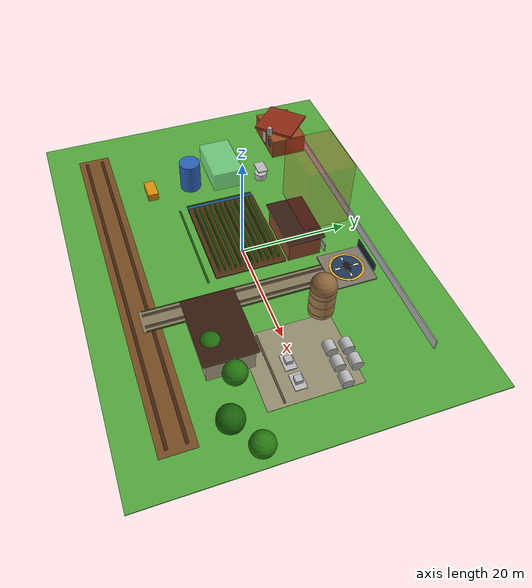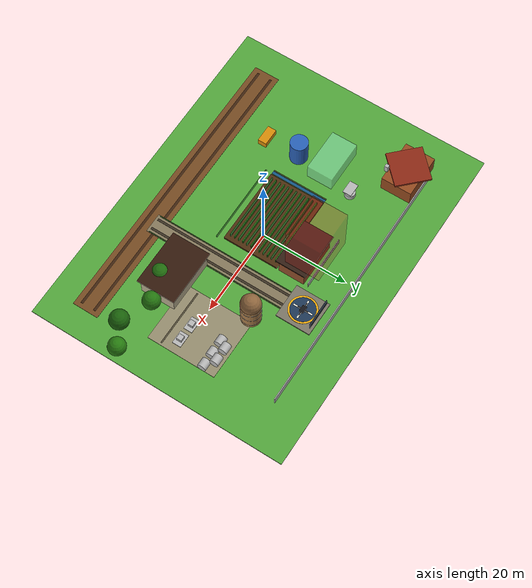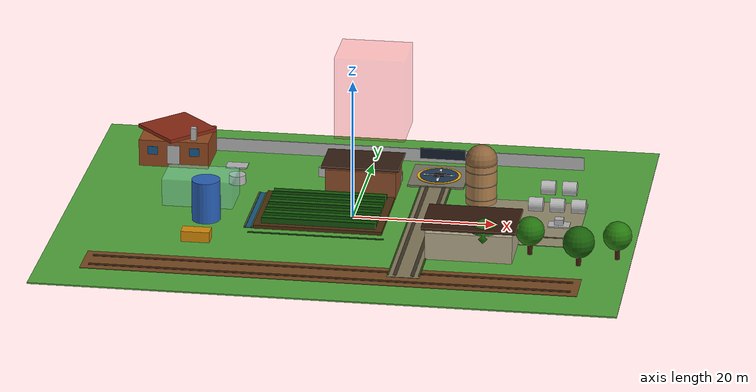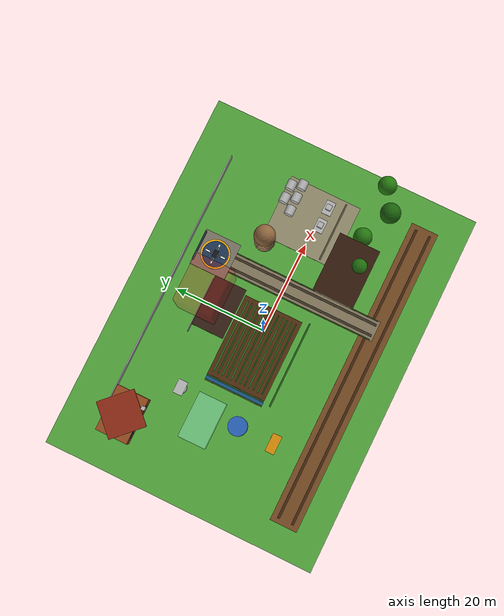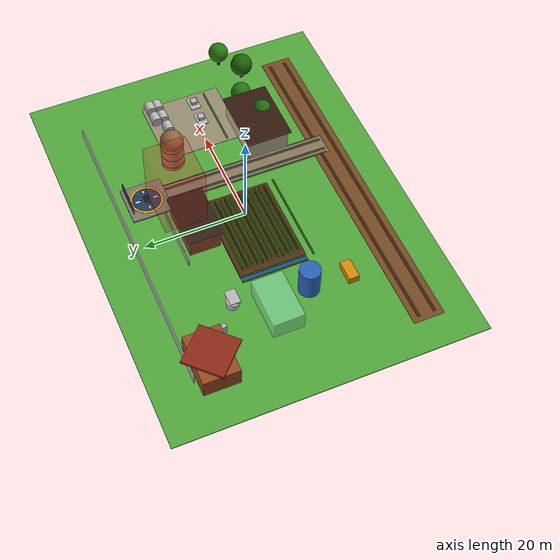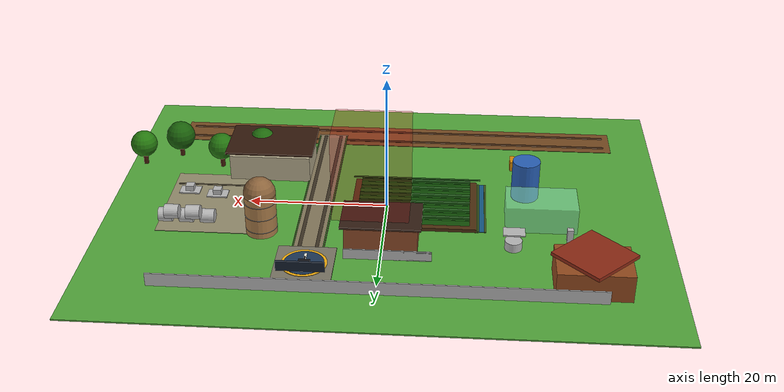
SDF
<?xml version="1.0" ?>
<sdf version="1.9">
  <world name="farm_survey">
    <gravity>0 0 -9.81</gravity>
    <physics name="default_physics" type="ode"><max_step_size>0.004</max_step_size><real_time_factor>1</real_time_factor></physics>
    <scene><ambient>0.55 0.55 0.55 1</ambient><background>0.55 0.75 0.95 1</background><shadows>true</shadows></scene>
    <plugin filename="gz-sim-physics-system" name="gz::sim::systems::Physics"/>
    <plugin filename="gz-sim-user-commands-system" name="gz::sim::systems::UserCommands"/>
    <plugin filename="gz-sim-sensors-system" name="gz::sim::systems::Sensors"/>
    <plugin filename="gz-sim-scene-broadcaster-system" name="gz::sim::systems::SceneBroadcaster"/>
    <gui fullscreen="0">
      <plugin filename="MinimalScene" name="3D View">
        <gz-gui>
          <title>3D View</title>
          <property type="bool" key="showTitleBar">false</property>
          <property type="string" key="state">docked</property>
        </gz-gui>
        <engine>ogre2</engine>
        <scene>scene</scene>
        <!-- Start with the complete farm, route overlay, and restricted volume in view. -->
        <camera_pose>-45 -45 55 0 0.65 0.785398</camera_pose>
        <ambient_light>0.55 0.55 0.55</ambient_light>
        <background_color>0.55 0.75 0.95</background_color>
      </plugin>
      <plugin filename="GzSceneManager" name="Scene Manager"/>
      <plugin filename="InteractiveViewControl" name="Interactive view control"/>
      <plugin filename="WorldControl" name="World control"/>
      <plugin filename="WorldStats" name="World stats"/>
      <plugin filename="EntityContextMenuPlugin" name="Entity context menu"/>
      <plugin filename="MarkerManager" name="MarkerManager">
        <topic_name>/marker</topic_name>
      </plugin>
    </gui>
    <light name="sun" type="directional"><cast_shadows>true</cast_shadows><pose>0 0 30 0 0 0</pose><diffuse>0.9 0.9 0.8 1</diffuse><direction>-0.4 0.2 -1</direction></light>
    <light name="fill_light" type="directional"><cast_shadows>false</cast_shadows><pose>0 0 20 0 0 0</pose><diffuse>0.28 0.34 0.42 1</diffuse><specular>0.08 0.1 0.14 1</specular><direction>0.55 -0.35 -1</direction></light>
    <model name="farm_ground"><static>true</static>
      <link name="link"><collision name="collision"><geometry><box><size>80 60 0.2</size></box></geometry></collision><visual name="visual"><geometry><box><size>80 60 0.2</size></box></geometry><material><ambient>0.24 0.52 0.18 1</ambient><diffuse>0.32 0.65 0.23 1</diffuse></material></visual></link>
    </model>

    <!-- Dedicated launch and landing area; home coordinates are (10, 16). -->
    <model name="drone_station"><static>true</static><pose>10 16 0 0 0 0</pose>
      <link name="link">
        <collision name="deck_collision"><pose>0 0 0.25 0 0 0</pose><geometry><box><size>8 8 0.3</size></box></geometry></collision>
        <visual name="deck"><pose>0 0 0.25 0 0 0</pose><geometry><box><size>8 8 0.3</size></box></geometry><material><ambient>0.26 0.25 0.22 1</ambient><diffuse>0.48 0.46 0.4 1</diffuse><specular>0.16 0.16 0.14 1</specular><pbr><metal><albedo_map>model://assets/materials/concrete/concrete_albedo_2k.png</albedo_map><roughness_map>model://assets/materials/concrete/concrete_roughness_2k.png</roughness_map><metalness>0.0</metalness><roughness>0.82</roughness></metal></pbr></material></visual>
        <visual name="landing_zone"><pose>0 0 0.43 0 0 0</pose><geometry><cylinder><radius>3.15</radius><length>0.08</length></cylinder></geometry><material><ambient>0.85 0.52 0.03 1</ambient><diffuse>0.95 0.68 0.06 1</diffuse></material></visual>
        <visual name="landing_zone_inner"><pose>0 0 0.48 0 0 0</pose><geometry><cylinder><radius>2.75</radius><length>0.03</length></cylinder></geometry><material><ambient>0.08 0.14 0.22 1</ambient><diffuse>0.12 0.22 0.34 1</diffuse></material></visual>
        <visual name="landing_cross_x"><pose>0 0 0.51 0 0 0</pose><geometry><box><size>4.5 0.35 0.04</size></box></geometry><material><diffuse>0.95 0.95 0.9 1</diffuse></material></visual>
        <visual name="landing_cross_y"><pose>0 0 0.51 0 0 0</pose><geometry><box><size>0.35 4.5 0.04</size></box></geometry><material><diffuse>0.95 0.95 0.9 1</diffuse></material></visual>
        <visual name="station_sign"><pose>0 3.55 2.35 0 0 0</pose><geometry><box><size>6.5 0.2 1.5</size></box></geometry><material><diffuse>0.08 0.12 0.18 1</diffuse></material></visual>
      </link>
    </model>

    <!-- Logical Nav2 no-fly zone marker: visual only, with no collision. -->
    <model name="north_access_restriction_visual"><static>true</static><pose>1 13 14 0 0 0</pose>
      <link name="link">
        <visual name="restricted_volume">
          <geometry><box><size>10 8 12</size></box></geometry>
          <material>
            <ambient>0.65 0.02 0.02 1</ambient>
            <diffuse>0.95 0.04 0.04 1</diffuse>
            <emissive>0.18 0 0 1</emissive>
          </material>
          <transparency>0.82</transparency>
        </visual>
      </link>
    </model>

    <!-- Layered surfaces make the aerial view read as a cultivated farm. -->
    <model name="farm_dirt_road"><static>true</static><pose>0 -21 0.13 0 0 0</pose><link name="link"><visual name="road"><geometry><box><size>68 6 0.08</size></box></geometry><material><ambient>0.34 0.2 0.09 1</ambient><diffuse>0.46 0.29 0.13 1</diffuse><specular>0.08 0.05 0.02 1</specular><pbr><metal><albedo_map>model://assets/materials/dirt_ground/dirt_ground_albedo_2k.png</albedo_map><roughness_map>model://assets/materials/dirt_ground/dirt_ground_roughness_2k.png</roughness_map><metalness>0.0</metalness><roughness>0.96</roughness></metal></pbr></material></visual><visual name="left_track"><pose>0 -1.55 0.06 0 0 0</pose><geometry><box><size>66 0.55 0.03</size></box></geometry><material><diffuse>0.25 0.14 0.06 1</diffuse></material></visual><visual name="right_track"><pose>0 1.55 0.06 0 0 0</pose><geometry><box><size>66 0.55 0.03</size></box></geometry><material><diffuse>0.25 0.14 0.06 1</diffuse></material></visual></link></model>
    <model name="station_access_lane"><static>true</static><pose>10 -2 0.16 0 0 0</pose><link name="link"><visual name="gravel"><geometry><box><size>4.5 38 0.1</size></box></geometry><material><ambient>0.32 0.28 0.21 1</ambient><diffuse>0.52 0.47 0.36 1</diffuse><specular>0.12 0.1 0.07 1</specular><pbr><metal><albedo_map>model://assets/materials/dirt_ground/dirt_ground_albedo_2k.png</albedo_map><roughness_map>model://assets/materials/dirt_ground/dirt_ground_roughness_2k.png</roughness_map><metalness>0.0</metalness><roughness>0.96</roughness></metal></pbr></material></visual><visual name="wheel_track_left"><pose>-1.2 0 0.07 0 0 0</pose><geometry><box><size>0.5 37 0.04</size></box></geometry><material><diffuse>0.24 0.2 0.14 1</diffuse></material></visual><visual name="wheel_track_right"><pose>1.2 0 0.07 0 0 0</pose><geometry><box><size>0.5 37 0.04</size></box></geometry><material><diffuse>0.24 0.2 0.14 1</diffuse></material></visual><visual name="lane_edge_left"><pose>-2.1 0 0.08 0 0 0</pose><geometry><box><size>0.18 37 0.06</size></box></geometry><material><diffuse>0.16 0.34 0.09 1</diffuse></material></visual><visual name="lane_edge_right"><pose>2.1 0 0.08 0 0 0</pose><geometry><box><size>0.18 37 0.06</size></box></geometry><material><diffuse>0.16 0.34 0.09 1</diffuse></material></visual></link></model>
    <model name="farm_yard"><static>true</static><pose>25 1 0.14 0 0 0</pose><link name="link"><visual name="yard"><geometry><box><size>14 16 0.08</size></box></geometry><material><ambient>0.42 0.4 0.32 1</ambient><diffuse>0.58 0.55 0.43 1</diffuse><specular>0.12 0.12 0.1 1</specular><pbr><metal><albedo_map>model://assets/materials/dirt_ground/dirt_ground_albedo_2k.png</albedo_map><roughness_map>model://assets/materials/dirt_ground/dirt_ground_roughness_2k.png</roughness_map><metalness>0.0</metalness><roughness>0.96</roughness></metal></pbr></material></visual><visual name="yard_strip"><pose>0 -5 0.06 0 0 0</pose><geometry><box><size>13 0.35 0.03</size></box></geometry><material><diffuse>0.31 0.28 0.2 1</diffuse></material></visual></link></model>
    <model name="yard_pallets"><static>true</static><pose>27 -1 0.45 0 0 0</pose><link name="link"><visual name="pallet01"><pose>-2 0 0 0 0 0</pose><geometry><box><size>3 2 0.18</size></box></geometry><material><pbr><metal><albedo_map>model://assets/materials/farmhouse_body/farmhouse_body_albedo_2k.png</albedo_map><roughness_map>model://assets/materials/farmhouse_body/farmhouse_body_roughness_2k.png</roughness_map><metalness>0.0</metalness><roughness>0.7</roughness></metal></pbr></material></visual><visual name="pallet02"><pose>2 0 0.5 0 0 0</pose><geometry><box><size>3 2 0.18</size></box></geometry><material><pbr><metal><albedo_map>model://assets/materials/farmhouse_body/farmhouse_body_albedo_2k.png</albedo_map><roughness_map>model://assets/materials/farmhouse_body/farmhouse_body_roughness_2k.png</roughness_map><metalness>0.0</metalness><roughness>0.7</roughness></metal></pbr></material></visual><visual name="crate01"><pose>-2 0 0.55 0 0 0</pose><geometry><box><size>1.2 1.2 0.8</size></box></geometry><material><pbr><metal><albedo_map>model://assets/materials/farmhouse_body/farmhouse_body_albedo_2k.png</albedo_map><roughness_map>model://assets/materials/farmhouse_body/farmhouse_body_roughness_2k.png</roughness_map><metalness>0.0</metalness><roughness>0.7</roughness></metal></pbr></material></visual><visual name="crate02"><pose>2 0 1.05 0 0 0</pose><geometry><box><size>1.2 1.2 0.8</size></box></geometry><material><pbr><metal><albedo_map>model://assets/materials/farmhouse_body/farmhouse_body_albedo_2k.png</albedo_map><roughness_map>model://assets/materials/farmhouse_body/farmhouse_body_roughness_2k.png</roughness_map><metalness>0.0</metalness><roughness>0.7</roughness></metal></pbr></material></visual></link></model>
    <model name="south_field_border"><static>true</static><pose>-4 -8 0.15 0 0 0</pose><link name="link"><visual name="grass_edge"><geometry><box><size>19 0.35 0.08</size></box></geometry><material><diffuse>0.12 0.34 0.08 1</diffuse></material></visual></link></model>
    <model name="field_irrigation_channel"><static>true</static><pose>-13.7 0 0.2 0 0 0</pose><link name="link"><visual name="water"><geometry><box><size>0.7 13 0.08</size></box></geometry><material><ambient>0.04 0.18 0.3 1</ambient><diffuse>0.08 0.34 0.52 1</diffuse><specular>0.7 0.8 0.9 1</specular></material></visual><visual name="bank_left"><pose>-0.5 0 0 0 0 0</pose><geometry><box><size>0.25 13 0.2</size></box></geometry><material><diffuse>0.24 0.32 0.12 1</diffuse></material></visual><visual name="bank_right"><pose>0.5 0 0 0 0 0</pose><geometry><box><size>0.25 13 0.2</size></box></geometry><material><diffuse>0.24 0.32 0.12 1</diffuse></material></visual></link></model>

    <!-- Farmhouse and utility scenery -->
    <model name="farmhouse"><static>true</static><pose>-28 18 2 0 0 0</pose><link name="link"><visual name="body"><geometry><box><size>10 7 4</size></box></geometry><material><ambient>0.32 0.16 0.07 1</ambient><diffuse>0.58 0.29 0.12 1</diffuse><specular>0.18 0.12 0.08 1</specular><pbr><metal><albedo_map>model://assets/materials/farmhouse_body/farmhouse_body_albedo_2k.png</albedo_map><roughness_map>model://assets/materials/farmhouse_body/farmhouse_body_roughness_2k.png</roughness_map><metalness>0.0</metalness><roughness>0.58</roughness></metal></pbr></material></visual><visual name="roof"><pose>0 0 2.8 0 0 0.785</pose><geometry><box><size>8 8 0.5</size></box></geometry><material><diffuse>0.55 0.16 0.08 1</diffuse></material></visual></link></model>
    <model name="well_north"><static>true</static><pose>-18 10 0.7 0 0 0</pose><link name="link"><visual name="ring"><geometry><cylinder><radius>1.2</radius><length>1.4</length></cylinder></geometry><material><pbr><metal><albedo_map>model://assets/materials/concrete/concrete_albedo_2k.png</albedo_map><roughness_map>model://assets/materials/concrete/concrete_roughness_2k.png</roughness_map><metalness>0.0</metalness><roughness>0.88</roughness></metal></pbr></material></visual><visual name="roof"><pose>0 0 2 0 0 0</pose><geometry><box><size>3 2 0.2</size></box></geometry><material><pbr><metal><albedo_map>model://assets/materials/cattle_shed_body/cattle_shed_body_albedo_2k.png</albedo_map><roughness_map>model://assets/materials/cattle_shed_body/cattle_shed_body_roughness_2k.png</roughness_map><metalness>0.0</metalness><roughness>0.75</roughness></metal></pbr></material></visual></link></model>
    <model name="cattle_shed_west"><static>true</static><pose>0 10 2 0 0 0</pose><link name="link"><visual name="body"><geometry><box><size>10 6 4</size></box></geometry><material><ambient>0.3 0.16 0.08 1</ambient><diffuse>0.56 0.3 0.16 1</diffuse><specular>0.18 0.12 0.08 1</specular><pbr><metal><albedo_map>model://assets/materials/cattle_shed_body/cattle_shed_body_albedo_2k.png</albedo_map><roughness_map>model://assets/materials/cattle_shed_body/cattle_shed_body_roughness_2k.png</roughness_map><metalness>0.0</metalness><roughness>0.7</roughness></metal></pbr></material></visual><visual name="roof"><pose>0 0 2.5 0 0 0</pose><geometry><box><size>11 7 0.3</size></box></geometry><material><diffuse>0.2 0.12 0.08 1</diffuse></material></visual></link></model>
    <!-- Visual-only silo skin: geometry, pose, collision, and target identity remain unchanged. -->
    <model name="storage_silo_east"><static>true</static><pose>17 8 3 0 0 0</pose><link name="link"><visual name="tank"><geometry><cylinder><radius>2.2</radius><length>6</length></cylinder></geometry><material><ambient>0.38 0.28 0.18 1</ambient><diffuse>0.68 0.5 0.3 1</diffuse><specular>0.78 0.72 0.62 1</specular><pbr><metal><albedo_map>model://assets/materials/storage_silo/storage_silo_albedo_2k.png</albedo_map><roughness_map>model://assets/materials/storage_silo/storage_silo_roughness_2k.png</roughness_map><metalness>0.24</metalness><roughness>0.36</roughness></metal></pbr></material></visual><visual name="cap"><pose>0 0 3.3 0 0 0</pose><geometry><sphere><radius>2.25</radius></sphere></geometry><material><ambient>0.3 0.22 0.14 1</ambient><diffuse>0.56 0.4 0.24 1</diffuse><specular>0.72 0.66 0.56 1</specular><pbr><metal><albedo_map>model://assets/materials/storage_silo/storage_silo_albedo_2k.png</albedo_map><roughness_map>model://assets/materials/storage_silo/storage_silo_roughness_2k.png</roughness_map><metalness>0.2</metalness><roughness>0.32</roughness></metal></pbr></material></visual></link></model>
    <model name="produce_barn_south"><static>true</static><pose>18 -10 2 0 0 0</pose><link name="link"><visual name="body"><geometry><box><size>12 8 4</size></box></geometry><material><ambient>0.3 0.32 0.28 1</ambient><diffuse>0.72 0.68 0.56 1</diffuse><specular>0.16 0.15 0.12 1</specular><pbr><metal><albedo_map>model://assets/materials/produce_barn_body/produce_barn_body_albedo_2k.png</albedo_map><roughness_map>model://assets/materials/produce_barn_body/produce_barn_body_roughness_2k.png</roughness_map><metalness>0.0</metalness><roughness>0.72</roughness></metal></pbr></material></visual><visual name="roof"><pose>0 0 2.7 0 0 0</pose><geometry><box><size>13 9 0.3</size></box></geometry><material><diffuse>0.2 0.1 0.05 1</diffuse></material></visual></link></model>
    <model name="water_tank_northwest"><static>true</static><pose>-20 -4 3 0 0 0</pose><link name="link"><visual name="tank"><geometry><cylinder><radius>2</radius><length>6</length></cylinder></geometry><material><ambient>0.08 0.16 0.3 1</ambient><diffuse>0.16 0.38 0.72 1</diffuse><specular>0.62 0.68 0.78 1</specular><pbr><metal><roughness_map>model://assets/materials/storage_silo/storage_silo_roughness_2k.png</roughness_map><metalness>0.22</metalness><roughness>0.34</roughness></metal></pbr></material></visual><visual name="legs"><pose>0 0 -3.2 0 0 0</pose><geometry><box><size>3 3 0.4</size></box></geometry><material><pbr><metal><roughness_map>model://assets/materials/storage_silo/storage_silo_roughness_2k.png</roughness_map><metalness>0.28</metalness><roughness>0.4</roughness></metal></pbr></material></visual></link></model>
    <model name="greenhouse_southeast"><static>true</static><pose>-22 3 2 0 0 0</pose><link name="link"><visual name="body"><geometry><box><size>10 6 4</size></box></geometry><material><diffuse>0.55 0.9 0.72 1</diffuse></material><transparency>0.45</transparency></visual></link></model>

    <!-- Crop plots and rows -->
    <model name="crop_field_central"><static>true</static><pose>-4 0 0.35 0 0 0</pose><link name="link"><visual name="plot"><geometry><box><size>18 13 0.5</size></box></geometry><material><diffuse>0.3 0.18 0.06 1</diffuse></material></visual></link></model>
    <model name="crop_rows"><static>true</static><pose>-4 0 0.9 0 0 0</pose><link name="link"><visual name="row01"><pose>0 -5.5 0 0 0 0</pose><geometry><box><size>16 0.22 1</size></box></geometry><material><diffuse>0.08 0.32 0.05 1</diffuse></material></visual><visual name="row02"><pose>0 -4.5 0 0 0 0</pose><geometry><box><size>16 0.22 1</size></box></geometry><material><diffuse>0.12 0.45 0.07 1</diffuse></material></visual><visual name="row03"><pose>0 -3.5 0 0 0 0</pose><geometry><box><size>16 0.22 1</size></box></geometry><material><diffuse>0.08 0.35 0.05 1</diffuse></material></visual><visual name="row04"><pose>0 -2.5 0 0 0 0</pose><geometry><box><size>16 0.22 1</size></box></geometry><material><diffuse>0.14 0.48 0.08 1</diffuse></material></visual><visual name="row05"><pose>0 -1.5 0 0 0 0</pose><geometry><box><size>16 0.22 1</size></box></geometry><material><diffuse>0.08 0.34 0.05 1</diffuse></material></visual><visual name="row06"><pose>0 -0.5 0 0 0 0</pose><geometry><box><size>16 0.22 1</size></box></geometry><material><diffuse>0.12 0.44 0.06 1</diffuse></material></visual><visual name="row07"><pose>0 0.5 0 0 0 0</pose><geometry><box><size>16 0.22 1</size></box></geometry><material><diffuse>0.08 0.32 0.05 1</diffuse></material></visual><visual name="row08"><pose>0 1.5 0 0 0 0</pose><geometry><box><size>16 0.22 1</size></box></geometry><material><diffuse>0.14 0.48 0.08 1</diffuse></material></visual><visual name="row09"><pose>0 2.5 0 0 0 0</pose><geometry><box><size>16 0.22 1</size></box></geometry><material><diffuse>0.08 0.35 0.05 1</diffuse></material></visual><visual name="row10"><pose>0 3.5 0 0 0 0</pose><geometry><box><size>16 0.22 1</size></box></geometry><material><diffuse>0.12 0.45 0.07 1</diffuse></material></visual><visual name="row11"><pose>0 4.5 0 0 0 0</pose><geometry><box><size>16 0.22 1</size></box></geometry><material><diffuse>0.08 0.32 0.05 1</diffuse></material></visual><visual name="row12"><pose>0 5.5 0 0 0 0</pose><geometry><box><size>16 0.22 1</size></box></geometry><material><diffuse>0.14 0.48 0.08 1</diffuse></material></visual></link></model>

    <!-- Orchard, hay, and field-edge details. -->
    <model name="orchard"><static>true</static><pose>28 -12 0 0 0 0</pose><link name="link"><visual name="trunk01"><pose>-8 0 1.6 0 0 0</pose><geometry><cylinder><radius>0.35</radius><length>3.2</length></cylinder></geometry><material><diffuse>0.25 0.1 0.03 1</diffuse></material></visual><visual name="canopy01"><pose>-8 0 3.5 0 0 0</pose><geometry><sphere><radius>2.1</radius></sphere></geometry><material><ambient>0.05 0.2 0.03 1</ambient><diffuse>0.12 0.42 0.05 1</diffuse></material></visual><visual name="trunk02"><pose>-2 2 1.6 0 0 0</pose><geometry><cylinder><radius>0.35</radius><length>3.2</length></cylinder></geometry><material><diffuse>0.25 0.1 0.03 1</diffuse></material></visual><visual name="canopy02"><pose>-2 2 3.5 0 0 0</pose><geometry><sphere><radius>2.0</radius></sphere></geometry><material><diffuse>0.14 0.46 0.06 1</diffuse></material></visual><visual name="trunk03"><pose>5 -1 1.6 0 0 0</pose><geometry><cylinder><radius>0.35</radius><length>3.2</length></cylinder></geometry><material><diffuse>0.25 0.1 0.03 1</diffuse></material></visual><visual name="canopy03"><pose>5 -1 3.5 0 0 0</pose><geometry><sphere><radius>2.2</radius></sphere></geometry><material><diffuse>0.1 0.38 0.04 1</diffuse></material></visual><visual name="trunk04"><pose>10 2 1.6 0 0 0</pose><geometry><cylinder><radius>0.35</radius><length>3.2</length></cylinder></geometry><material><diffuse>0.25 0.1 0.03 1</diffuse></material></visual><visual name="canopy04"><pose>10 2 3.5 0 0 0</pose><geometry><sphere><radius>2.0</radius></sphere></geometry><material><diffuse>0.15 0.48 0.06 1</diffuse></material></visual></link></model>
    <model name="hay_bales"><static>true</static><pose>28 6 0 0 0 0</pose><link name="link"><visual name="bale01"><pose>-3 0 1 0 1.5708 0</pose><geometry><cylinder><radius>1</radius><length>2</length></cylinder></geometry><material><pbr><metal><albedo_map>model://assets/materials/hay/hay_albedo_2k.png</albedo_map><roughness_map>model://assets/materials/hay/hay_roughness_2k.png</roughness_map><metalness>0.0</metalness><roughness>0.9</roughness></metal></pbr></material></visual><visual name="bale02"><pose>0 0 1 0 1.5708 0</pose><geometry><cylinder><radius>1</radius><length>2</length></cylinder></geometry><material><pbr><metal><albedo_map>model://assets/materials/hay/hay_albedo_2k.png</albedo_map><roughness_map>model://assets/materials/hay/hay_roughness_2k.png</roughness_map><metalness>0.0</metalness><roughness>0.9</roughness></metal></pbr></material></visual><visual name="bale03"><pose>3 0 1 0 1.5708 0</pose><geometry><cylinder><radius>1</radius><length>2</length></cylinder></geometry><material><pbr><metal><albedo_map>model://assets/materials/hay/hay_albedo_2k.png</albedo_map><roughness_map>model://assets/materials/hay/hay_roughness_2k.png</roughness_map><metalness>0.0</metalness><roughness>0.9</roughness></metal></pbr></material></visual><visual name="bale04"><pose>-1.5 2 2.8 0 1.5708 0</pose><geometry><cylinder><radius>1</radius><length>2</length></cylinder></geometry><material><pbr><metal><albedo_map>model://assets/materials/hay/hay_albedo_2k.png</albedo_map><roughness_map>model://assets/materials/hay/hay_roughness_2k.png</roughness_map><metalness>0.0</metalness><roughness>0.9</roughness></metal></pbr></material></visual><visual name="bale05"><pose>1.5 2 2.8 0 1.5708 0</pose><geometry><cylinder><radius>1</radius><length>2</length></cylinder></geometry><material><pbr><metal><albedo_map>model://assets/materials/hay/hay_albedo_2k.png</albedo_map><roughness_map>model://assets/materials/hay/hay_roughness_2k.png</roughness_map><metalness>0.0</metalness><roughness>0.9</roughness></metal></pbr></material></visual></link></model>

    <!-- Farm architecture details: openings, silo ribs, and livestock pen. -->
    <model name="farmhouse_details"><static>true</static><pose>-28 14.45 2 0 0 0</pose><link name="link"><visual name="door"><pose>0 0 0 0 0 0</pose><geometry><box><size>1.8 0.12 2.8</size></box></geometry><material><pbr><metal><albedo_map>model://assets/materials/farmhouse_body/farmhouse_body_albedo_2k.png</albedo_map><roughness_map>model://assets/materials/farmhouse_body/farmhouse_body_roughness_2k.png</roughness_map><metalness>0.0</metalness><roughness>0.7</roughness></metal></pbr></material></visual><visual name="window_left"><pose>-3 0.08 0.5 0 0 0</pose><geometry><box><size>1.4 0.12 1.2</size></box></geometry><material><ambient>0.04 0.13 0.2 1</ambient><diffuse>0.08 0.35 0.55 1</diffuse></material></visual><visual name="window_right"><pose>3 0.08 0.5 0 0 0</pose><geometry><box><size>1.4 0.12 1.2</size></box></geometry><material><ambient>0.04 0.13 0.2 1</ambient><diffuse>0.08 0.35 0.55 1</diffuse></material></visual><visual name="chimney"><pose>3 0 3.4 0 0 0</pose><geometry><box><size>0.8 0.8 1.8</size></box></geometry><material><pbr><metal><albedo_map>model://assets/materials/concrete/concrete_albedo_2k.png</albedo_map><roughness_map>model://assets/materials/concrete/concrete_roughness_2k.png</roughness_map><metalness>0.0</metalness><roughness>0.88</roughness></metal></pbr></material></visual></link></model>
    <model name="silo_bands"><static>true</static><pose>17 8 3 0 0 0</pose><link name="link"><visual name="band01"><pose>0 0 -2 0 0 0</pose><geometry><cylinder><radius>2.24</radius><length>0.08</length></cylinder></geometry><material><pbr><metal><albedo_map>model://assets/materials/storage_silo/storage_silo_albedo_2k.png</albedo_map><roughness_map>model://assets/materials/storage_silo/storage_silo_roughness_2k.png</roughness_map><metalness>0.24</metalness><roughness>0.36</roughness></metal></pbr></material></visual><visual name="band02"><pose>0 0 0 0 0 0</pose><geometry><cylinder><radius>2.24</radius><length>0.08</length></cylinder></geometry><material><pbr><metal><albedo_map>model://assets/materials/storage_silo/storage_silo_albedo_2k.png</albedo_map><roughness_map>model://assets/materials/storage_silo/storage_silo_roughness_2k.png</roughness_map><metalness>0.24</metalness><roughness>0.36</roughness></metal></pbr></material></visual><visual name="band03"><pose>0 0 2 0 0 0</pose><geometry><cylinder><radius>2.24</radius><length>0.08</length></cylinder></geometry><material><pbr><metal><albedo_map>model://assets/materials/storage_silo/storage_silo_albedo_2k.png</albedo_map><roughness_map>model://assets/materials/storage_silo/storage_silo_roughness_2k.png</roughness_map><metalness>0.24</metalness><roughness>0.36</roughness></metal></pbr></material></visual></link></model>
    <model name="cattle_pen"><static>true</static><pose>-1 14 0.8 0 0 0</pose><link name="link"><visual name="rail01"><pose>0 0 0 0 0 0</pose><geometry><box><size>12 0.15 1.6</size></box></geometry><material><pbr><metal><albedo_map>model://assets/materials/cattle_shed_body/cattle_shed_body_albedo_2k.png</albedo_map><roughness_map>model://assets/materials/cattle_shed_body/cattle_shed_body_roughness_2k.png</roughness_map><metalness>0.0</metalness><roughness>0.75</roughness></metal></pbr></material></visual><visual name="rail02"><pose>0 0 0.65 0 0 0</pose><geometry><box><size>12 0.15 0.15</size></box></geometry><material><pbr><metal><albedo_map>model://assets/materials/cattle_shed_body/cattle_shed_body_albedo_2k.png</albedo_map><roughness_map>model://assets/materials/cattle_shed_body/cattle_shed_body_roughness_2k.png</roughness_map><metalness>0.0</metalness><roughness>0.75</roughness></metal></pbr></material></visual><visual name="rail03"><pose>0 0 -0.65 0 0 0</pose><geometry><box><size>12 0.15 0.15</size></box></geometry><material><pbr><metal><albedo_map>model://assets/materials/cattle_shed_body/cattle_shed_body_albedo_2k.png</albedo_map><roughness_map>model://assets/materials/cattle_shed_body/cattle_shed_body_roughness_2k.png</roughness_map><metalness>0.0</metalness><roughness>0.75</roughness></metal></pbr></material></visual></link></model>

    <!-- Simple fence and tractor make the scene useful beyond detections. -->
    <model name="tractor"><static>true</static><pose>-20 -12 1 0 0 0</pose><link name="link"><visual name="body"><geometry><box><size>4 2 1.5</size></box></geometry><material><diffuse>0.85 0.55 0.03 1</diffuse></material></visual></link></model>
    <model name="fence_north"><static>true</static><pose>0 22 1 0 0 0</pose><link name="link"><visual name="rail"><geometry><box><size>60 0.2 2</size></box></geometry><material><pbr><metal><albedo_map>model://assets/materials/cattle_shed_body/cattle_shed_body_albedo_2k.png</albedo_map><roughness_map>model://assets/materials/cattle_shed_body/cattle_shed_body_roughness_2k.png</roughness_map><metalness>0.0</metalness><roughness>0.75</roughness></metal></pbr></material></visual></link></model>
    <model name="observer_drone">
      <static>false</static>
      <self_collide>false</self_collide>
      <allow_auto_disable>false</allow_auto_disable>
      <pose>10 16 0.6 0 0 0</pose>
      <link name="link">
        <gravity>false</gravity>
        <visual name="body"><geometry><box><size>1.6 1.0 0.3</size></box></geometry><material><ambient>0.03 0.03 0.04 1</ambient><diffuse>0.08 0.08 0.1 1</diffuse><specular>0.6 0.6 0.65 1</specular></material></visual>
        <visual name="arm_x"><geometry><box><size>3.2 0.15 0.12</size></box></geometry><material><diffuse>0.1 0.1 0.12 1</diffuse></material></visual>
        <visual name="arm_y"><geometry><box><size>0.15 2.5 0.12</size></box></geometry><material><diffuse>0.1 0.1 0.12 1</diffuse></material></visual>
        <visual name="camera"><pose>0 0 -0.34 0 0 0</pose><geometry><sphere><radius>0.22</radius></sphere></geometry><material><diffuse>0.05 0.2 0.8 1</diffuse></material></visual>
        <sensor name="downward_camera" type="camera">
          <pose>0 0 -0.36 0 1.5708 0</pose>
          <camera>
            <horizontal_fov>1.0472</horizontal_fov>
            <image><width>320</width><height>240</height><format>R8G8B8</format></image>
            <clip><near>0.1</near><far>100</far></clip>
            <camera_info_topic>/drone/camera/camera_info</camera_info_topic>
          </camera>
          <always_on>true</always_on>
          <update_rate>5</update_rate>
          <visualize>true</visualize>
          <topic>/drone/camera/image_raw</topic>
        </sensor>
      </link>
    </model>
  </world>
</sdf>
